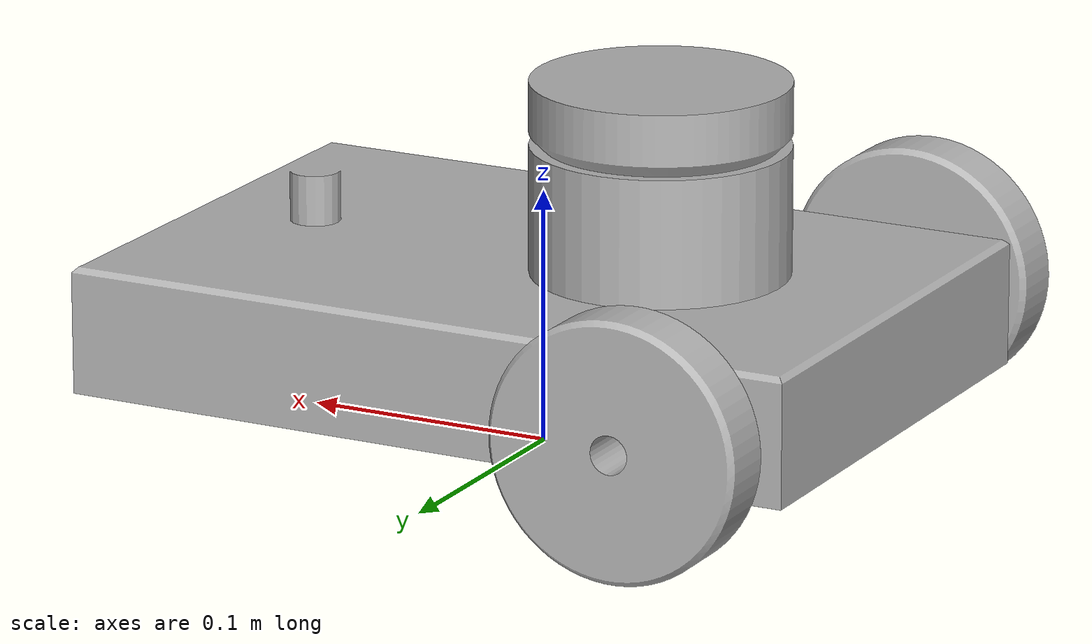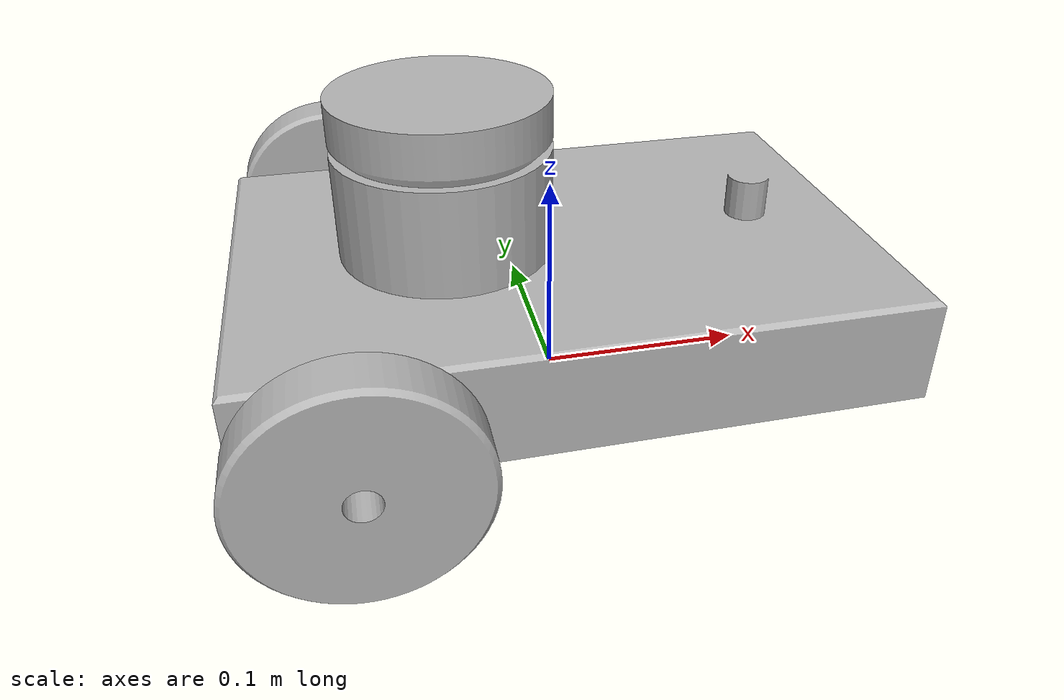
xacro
<?xml version="1.0" ?>
<robot name="differential_drive_robot" xmlns:xacro="http://www.ros.org/wiki/xacro">

<xacro:include filename="$(find differential_drive_robot_description)/urdf/materials.xacro" />
<xacro:include filename="$(find differential_drive_robot_description)/urdf/differential_drive_robot.trans" />
<xacro:include filename="$(find differential_drive_robot_description)/urdf/differential_drive_robot.gazebo" />
<link name="base_link">
  <inertial>
    <origin rpy="0 0 0" xyz="-0.005742236615221212 2.1385444115629857e-17 0.055821501044875446"/>
    <mass value="3.6064320335520312"/>
    <inertia ixx="0.012585" ixy="0.0" ixz="0.000897" iyy="0.026802" iyz="0.0" izz="0.036037"/>
  </inertial>
  <visual>
    <origin rpy="0 0 0" xyz="0 0 0"/>
    <geometry>
      <mesh filename="package://differential_drive_robot_description/meshes/base_link.stl" scale="0.001 0.001 0.001"/>
    </geometry>
    <material name="silver"/>
  </visual>
  <collision>
    <origin rpy="0 0 0" xyz="0 0 0"/>
    <geometry>
      <mesh filename="package://differential_drive_robot_description/meshes/base_link.stl" scale="0.001 0.001 0.001"/>
    </geometry>
  </collision>
</link>

<link name="right_wheel_1">
  <inertial>
    <origin rpy="0 0 0" xyz="-1.8096635301390052e-14 -0.012500000000000025 0.0"/>
    <mass value="0.17734336868006007"/>
    <inertia ixx="0.000122" ixy="0.0" ixz="-0.0" iyy="0.000225" iyz="-0.0" izz="0.000122"/>
  </inertial>
  <visual>
    <origin rpy="0 0 0" xyz="0.1 0.115 -0.05"/>
    <geometry>
      <mesh filename="package://differential_drive_robot_description/meshes/right_wheel_1.stl" scale="0.001 0.001 0.001"/>
    </geometry>
    <material name="silver"/>
  </visual>
  <collision>
    <origin rpy="0 0 0" xyz="0.1 0.115 -0.05"/>
    <geometry>
      <mesh filename="package://differential_drive_robot_description/meshes/right_wheel_1.stl" scale="0.001 0.001 0.001"/>
    </geometry>
  </collision>
</link>

<link name="left_wheel_1">
  <inertial>
    <origin rpy="0 0 0" xyz="1.8235413179468196e-14 0.012500000000000025 6.938893903907228e-18"/>
    <mass value="0.17734336868006004"/>
    <inertia ixx="0.000122" ixy="0.0" ixz="-0.0" iyy="0.000225" iyz="0.0" izz="0.000122"/>
  </inertial>
  <visual>
    <origin rpy="0 0 0" xyz="0.1 -0.115 -0.05"/>
    <geometry>
      <mesh filename="package://differential_drive_robot_description/meshes/left_wheel_1.stl" scale="0.001 0.001 0.001"/>
    </geometry>
    <material name="silver"/>
  </visual>
  <collision>
    <origin rpy="0 0 0" xyz="0.1 -0.115 -0.05"/>
    <geometry>
      <mesh filename="package://differential_drive_robot_description/meshes/left_wheel_1.stl" scale="0.001 0.001 0.001"/>
    </geometry>
  </collision>
</link>

<link name="caster_1">
  <inertial>
    <origin rpy="0 0 0" xyz="-2.7755575615628914e-17 4.342517325091522e-18 -0.009374999999999998"/>
    <mass value="0.25689064927791533"/>
    <inertia ixx="4.2e-05" ixy="0.0" ixz="0.0" iyy="4.2e-05" iyz="0.0" izz="6.4e-05"/>
  </inertial>
  <visual>
    <origin rpy="0 0 0" xyz="-0.1 -0.0 -0.025"/>
    <geometry>
      <mesh filename="package://differential_drive_robot_description/meshes/caster_1.stl" scale="0.001 0.001 0.001"/>
    </geometry>
    <material name="silver"/>
  </visual>
  <collision>
    <origin rpy="0 0 0" xyz="-0.1 -0.0 -0.025"/>
    <geometry>
      <mesh filename="package://differential_drive_robot_description/meshes/caster_1.stl" scale="0.001 0.001 0.001"/>
    </geometry>
  </collision>
</link>

<link name="lidar_1">
  <inertial>
    <origin rpy="0 0 0" xyz="4.163336342344337e-17 -1.1808340788828084e-17 0.012713290278721978"/>
    <mass value="1.5115445803512517"/>
    <inertia ixx="0.001005" ixy="-0.0" ixz="-0.0" iyy="0.001005" iyz="0.0" izz="0.001857"/>
  </inertial>
  <visual>
    <origin rpy="0 0 0" xyz="0.05 -0.0 -0.125"/>
    <geometry>
      <mesh filename="package://differential_drive_robot_description/meshes/lidar_1.stl" scale="0.001 0.001 0.001"/>
    </geometry>
    <material name="silver"/>
  </visual>
  <collision>
    <origin rpy="0 0 0" xyz="0.05 -0.0 -0.125"/>
    <geometry>
      <mesh filename="package://differential_drive_robot_description/meshes/lidar_1.stl" scale="0.001 0.001 0.001"/>
    </geometry>
  </collision>
</link>

<joint name="Rev1" type="continuous">
  <origin rpy="0 0 0" xyz="-0.1 -0.115 0.05"/>
  <parent link="base_link"/>
  <child link="right_wheel_1"/>
  <axis xyz="0.0 1.0 0.0"/>
</joint>

<joint name="Rev2" type="continuous">
  <origin rpy="0 0 0" xyz="-0.1 0.115 0.05"/>
  <parent link="base_link"/>
  <child link="left_wheel_1"/>
  <axis xyz="0.0 1.0 0.0"/>
</joint>

<joint name="Rigid3" type="fixed">
  <origin rpy="0 0 0" xyz="0.1 0.0 0.025"/>
  <parent link="base_link"/>
  <child link="caster_1"/>
</joint>

<joint name="Rigid4" type="fixed">
  <origin rpy="0 0 0" xyz="-0.05 0.0 0.125"/>
  <parent link="base_link"/>
  <child link="lidar_1"/>
</joint>

</robot>

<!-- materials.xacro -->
<robot name="differential_drive_robot" xmlns:xacro="http://www.ros.org/wiki/xacro" >

<material name="silver">
  <color rgba="0.700 0.700 0.700 1.000"/>
</material>

</robot>

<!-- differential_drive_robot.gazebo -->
<robot name="differential_drive_robot" xmlns:xacro="http://www.ros.org/wiki/xacro" >

<xacro:property name="body_color" value="Gazebo/Silver" />

<gazebo>
  <plugin filename="libgazebo_ros_control.so" name="control"/>
</gazebo>
<gazebo reference="base_link">
  <material>${body_color}</material>
  <mu1>0.2</mu1>
  <mu2>0.2</mu2>
  <selfCollide>true</selfCollide>
  <gravity>true</gravity>
</gazebo>

<gazebo reference="right_wheel_1">
  <material>${body_color}</material>
  <mu1>15000</mu1>
  <mu2>15000</mu2>
  <selfCollide>true</selfCollide>
</gazebo>

<gazebo reference="left_wheel_1">
  <material>${body_color}</material>
  <mu1>15000</mu1>
  <mu2>15000</mu2>
  <selfCollide>true</selfCollide>
</gazebo>

<gazebo reference="caster_1">
  <material>${body_color}</material>
  <mu1>0.1</mu1>
  <mu2>0.1</mu2>
  <selfCollide>true</selfCollide>
</gazebo>

<gazebo reference="lidar_1">
  <material>${body_color}</material>
  <mu1>0.2</mu1>
  <mu2>0.2</mu2>
  <selfCollide>true</selfCollide>
</gazebo>

<gazebo>
  <plugin name="differential_drive_controller" filename="libgazebo_ros_diff_drive.so">

    <!-- Plugin update rate in Hz -->
    <updateRate>10</updateRate>

    <!-- Name of left joint, defaults to `left_joint` -->
    <leftJoint>Rev2</leftJoint>

    <!-- Name of right joint, defaults to `right_joint` -->
    <rightJoint>Rev1</rightJoint>

    <!-- The distance from the center of one wheel to the other, in meters, defaults to 0.34 m -->
    <wheelSeparation>0.12</wheelSeparation>

    <!-- Diameter of the wheels, in meters, defaults to 0.15 m -->
    <wheelDiameter>0.100</wheelDiameter>

    <!-- Wheel acceleration, in rad/s^2, defaults to 0.0 rad/s^2 -->
    <wheelAcceleration>1.0</wheelAcceleration>

    <!-- Maximum torque which the wheels can produce, in Nm, defaults to 5 Nm -->
    <wheelTorque>20</wheelTorque>

    <!-- Topic to receive geometry_msgs/Twist message commands, defaults to `cmd_vel` -->
    <commandTopic>cmd_vel</commandTopic>

    <!-- Topic to publish nav_msgs/Odometry messages, defaults to `odom` -->
    <odometryTopic>odom</odometryTopic>

    <!-- Odometry frame, defaults to `odom` -->
    <odometryFrame>odom</odometryFrame>

    <!-- Robot frame to calculate odometry from, defaults to `base_footprint` -->
    <robotBaseFrame>base_link</robotBaseFrame>

    <!-- Odometry source, 0 for ENCODER, 1 for WORLD, defaults to WORLD -->
    <odometrySource>1</odometrySource>

    <!-- Set to true to publish transforms for the wheel links, defaults to false -->
    <publishWheelTF>true</publishWheelTF>

    <!-- Set to true to publish transforms for the odometry, defaults to true -->
    <publishOdom>true</publishOdom>

    <!-- Set to true to publish sensor_msgs/JointState on /joint_states for the wheel joints, defaults to false -->
    <publishWheelJointState>true</publishWheelJointState>

    <!-- Set to true to swap right and left wheels, defaults to true -->
    <legacyMode>false</legacyMode>
  </plugin>
</gazebo>

 <!-- hokuyo -->
  <gazebo reference="lidar_1">
     <sensor type="ray" name="head_hokuyo_sensor">
      <pose>0 0 0 0 0 0</pose>
      <visualize>false</visualize>
      <update_rate>20</update_rate>
      <ray>
        <scan>
          <horizontal>
            <samples>720</samples>
            <resolution>1</resolution>
            <min_angle>-3.14</min_angle>
            <max_angle>3.14</max_angle>
          </horizontal>
        </scan>
        <range>
          <min>0.5</min>
          <max>20</max>
          <resolution>0.01</resolution>
        </range>
        <noise>
          <type>gaussian</type>
          <mean>0.0</mean>
          <stddev>0.01</stddev>
        </noise>
      </ray>
      <plugin name="gazebo_ros_head_hokuyo_controller" filename="libgazebo_ros_laser.so">
        <topicName>/rrbot/laser/scan</topicName>
        <frameName>lidar_1</frameName>
      </plugin>
    </sensor>
  </gazebo>

</robot>
